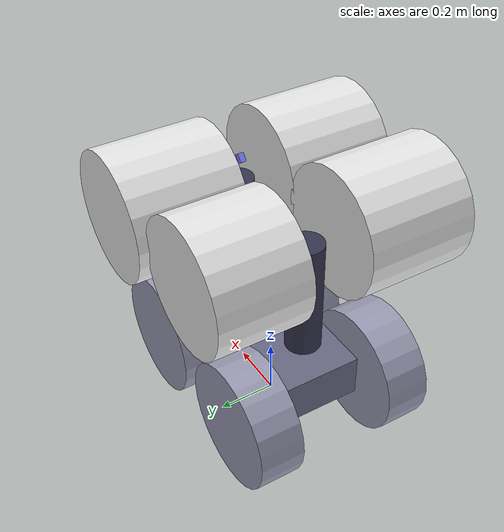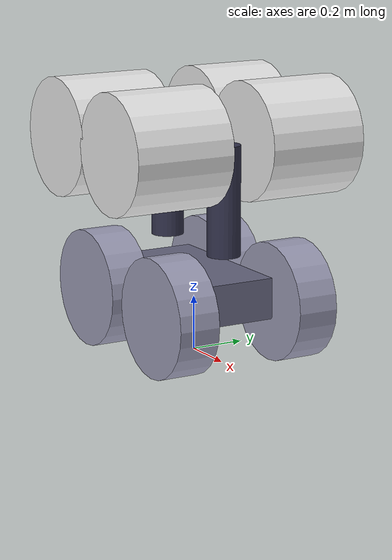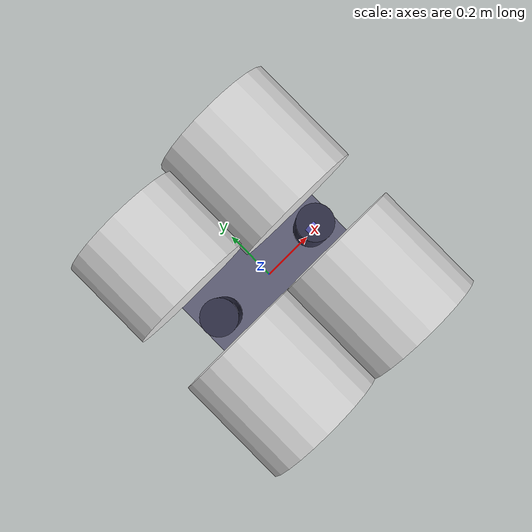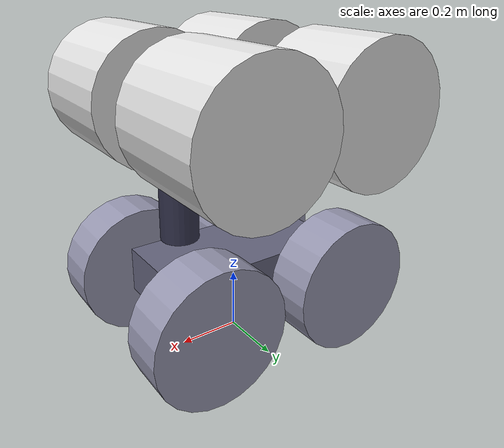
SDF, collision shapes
<?xml version="1.0" ?>
<sdf version="1.4">
  <model name="RASSOR2">

    <link name="chassis">
      <pose>0 0 0.240 0 0 0</pose>
      <inertial>
        <mass>35</mass>
        <inertia>
          <ixx>0.33</ixx>
          <ixy>0.0</ixy>
          <ixz>0.0</ixz>
          <iyy>6.7</iyy>
          <iyz>0.0</iyz>
          <izz>1.3</izz>
        </inertia>
      </inertial>
      <collision name="chassis_collision">
        <geometry>
	  <box>
	    <size>.60 .30 .15</size>
	  </box>
        </geometry>
	<surface>
	  <friction>
	    <ode>
	      <mu>0.9</mu>
	      <mu2>0.9</mu2>
	      <fdir1>0 0 0</fdir1>
	      <slip1>0.01</slip1>
	      <slip2>0.01</slip2>
	    </ode>
	  </friction>
	</surface>
      </collision>
      <visual name="chassis_visual">
        <geometry>
          <mesh>
            <uri>model://rassor2/chassis.dae</uri>
            <scale>1.0 1.0 1.0</scale>
          </mesh>
        </geometry>
	<material>
	    <ambient>0.4 0.4 0.5 1</ambient>
	    <diffuse>0.4 0.4 0.5 1</diffuse>
	    <specular>0.1 0.1 0.1 1</specular>
	    <emissive>0 0 0 0</emissive>
	</material>
      </visual>
    </link> <!-- end of chassis link -->

       <link name="front_arm_link">
            <pose>0.205 0.005 0.245 0 0 0</pose>
	    <inertial>
		<mass>2</mass>
		<inertia>
		  <ixx>0.04</ixx>
		  <ixy>0.0</ixy>
		  <ixz>0.0</ixz>
		  <iyy>0.04</iyy>
		  <iyz>0.0</iyz>
		  <izz>0.004</izz>
		</inertia>
	    </inertial>
            <collision name="collision">
            <pose>0 0 0.350 0 0 0</pose>
	      <geometry>
		<cylinder>
		  <radius>0.060</radius>
		  <length>0.4</length>
		</cylinder>
	      </geometry>
		<surface>
		  <friction>
		    <ode>
		      <mu>0.9</mu>
		      <mu2>0.9</mu2>
		      <fdir1>0 0 0</fdir1>
		      <slip1>0.01</slip1>
		      <slip2>0.01</slip2>
		    </ode>
		  </friction>
		</surface>
            </collision>
            <visual name="visual">
            <pose>0 -0.002 0.275 0 0 0</pose>
                <geometry>
                    <mesh>
            		<uri>model://rassor2/arm.dae</uri>
	                <scale>1.0 1.0 1.0</scale>
                    </mesh>
                </geometry>
		<material>
		    <ambient>0.2 0.2 0.3 1</ambient>
		    <diffuse>0.2 0.2 0.3 1</diffuse>
		    <specular>0.1 0.1 0.1 1</specular>
		    <emissive>0 0 0 0</emissive>
		</material>
            </visual>
        </link>

        <joint name="front_arm" type="revolute">
            <parent>chassis</parent>
            <child>front_arm_link</child>
            <axis>
                <xyz>0 1 0</xyz>
	        <limit>
	          <upper>3.82</upper>
	          <lower>-0.7</lower>
	        </limit>
            </axis>
        </joint>

      <link name="front_right_drum_link">
            <pose>0.205 -0.265 0.8 1.5708 0 0</pose>
	    <inertial>
		<mass>12</mass>
		<inertia>
		  <ixx>0.077</ixx>
		  <ixy>0.0</ixy>
		  <ixz>0.0</ixz>
		  <iyy>0.077</iyy>
		  <iyz>0.0</iyz>
		  <izz>0.093</izz>
		</inertia>
	    </inertial>
            <collision name="collision">
	      <geometry>
		<cylinder>
		  <radius>0.2159</radius>
		  <length>0.370</length>
		</cylinder>
	      </geometry>
		<surface>
		  <friction>
		    <ode>
		      <mu>0.9</mu>
		      <mu2>0.9</mu2>
		      <fdir1>0 0 0</fdir1>
		      <slip1>0.1</slip1>
		      <slip2>0.1</slip2>
		    </ode>
		  </friction>
		</surface>
            </collision>
            <visual name="visual">
                <geometry>
                    <mesh>
            		<uri>model://rassor2/right-drum.dae</uri>
	                <scale>1.0 1.0 1.0</scale>
                    </mesh>
                </geometry>
		<material>
		    <ambient>0.9 0.9 0.9 1</ambient>
		    <diffuse>0.9 0.9 0.9 1</diffuse>
		    <specular>0.1 0.1 0.1 1</specular>
		    <emissive>0 0 0 0</emissive>
		</material>
            </visual>
        </link>

        <joint name="front_right_drum" type="revolute">
            <parent>front_arm_link</parent>
            <child>front_right_drum_link</child>
            <axis>
                <xyz>0 1 0</xyz>
            </axis>
        </joint>

       <link name="front_left_drum_link">
            <pose>0.205 0.265 0.8 1.5708 0 0</pose>
	    <inertial>
		<mass>12</mass>
		<inertia>
		  <ixx>0.077</ixx>
		  <ixy>0.0</ixy>
		  <ixz>0.0</ixz>
		  <iyy>0.077</iyy>
		  <iyz>0.0</iyz>
		  <izz>0.093</izz>
		</inertia>
	    </inertial>
            <collision name="collision">
	      <geometry>
		<cylinder>
		  <radius>0.2159</radius>
		  <length>0.370</length>
		</cylinder>
	      </geometry>
		<surface>
		  <friction>
		    <ode>
		      <mu>0.9</mu>
		      <mu2>0.9</mu2>
		      <fdir1>0 0 0</fdir1>
		      <slip1>0.1</slip1>
		      <slip2>0.1</slip2>
		    </ode>
		  </friction>
		</surface>
            </collision>
            <visual name="visual">
            <pose>0 0 0 3.1416 0 0</pose>
                <geometry>
                    <mesh>
            		<uri>model://rassor2/left-drum.dae</uri>
	                <scale>1.0 1.0 1.0</scale>
                    </mesh>
                </geometry>
		<material>
		    <ambient>0.9 0.9 0.9 1</ambient>
		    <diffuse>0.9 0.9 0.9 1</diffuse>
		    <specular>0.1 0.1 0.1 1</specular>
		    <emissive>0 0 0 0</emissive>
		</material>
            </visual>
        </link>

        <joint name="front_left_drum" type="revolute">
            <parent>front_arm_link</parent>
            <child>front_left_drum_link</child>
            <axis>
                <xyz>0 1 0</xyz>
            </axis>
        </joint>

       <link name="rear_arm_link">
            <pose>-0.205 0.005 0.245 0 0 0</pose>
	    <inertial>
		<mass>2</mass>
		<inertia>
		  <ixx>0.04</ixx>
		  <ixy>0.0</ixy>
		  <ixz>0.0</ixz>
		  <iyy>0.04</iyy>
		  <iyz>0.0</iyz>
		  <izz>0.004</izz>
		</inertia>
	    </inertial>
            <collision name="collision">
            <pose>0 0 0.350 0 0 0</pose>
	      <geometry>
		<cylinder>
		  <radius>0.060</radius>
		  <length>0.4</length>
		</cylinder>
	      </geometry>
		<surface>
		  <friction>
		    <ode>
		      <mu>0.9</mu>
		      <mu2>0.9</mu2>
		      <fdir1>0 0 0</fdir1>
		      <slip1>0.01</slip1>
		      <slip2>0.01</slip2>
		    </ode>
		  </friction>
		</surface>
            </collision>
            <visual name="visual">
            <pose>0 -0.002 0.275 0 0 0</pose>
                <geometry>
                    <mesh>
            		<uri>model://rassor2/arm.dae</uri>
	                <scale>1.0 1.0 1.0</scale>
                    </mesh>
                </geometry>
		<material>
		    <ambient>0.2 0.2 0.3 1</ambient>
		    <diffuse>0.2 0.2 0.3 1</diffuse>
		    <specular>0.1 0.1 0.1 1</specular>
		    <emissive>0 0 0 0</emissive>
		</material>
            </visual>
        </link>

        <joint name="rear_arm" type="revolute">
            <parent>chassis</parent>
            <child>rear_arm_link</child>
            <axis>
                <xyz>0 1 0</xyz>
	        <limit>
	          <upper>0.7</upper>
	          <lower>-3.82</lower>
	        </limit>
            </axis>
        </joint>

       <link name="rear_right_drum_link">
            <pose>-0.205 -0.265 0.8 1.5708 0 0</pose>
	    <inertial>
		<mass>4</mass>
		<inertia>
		  <ixx>0.077</ixx>
		  <ixy>0.0</ixy>
		  <ixz>0.0</ixz>
		  <iyy>0.077</iyy>
		  <iyz>0.0</iyz>
		  <izz>0.093</izz>
		</inertia>
	    </inertial>
            <collision name="collision">
	      <geometry>
		<cylinder>
		  <radius>0.2159</radius>
		  <length>0.370</length>
		</cylinder>
	      </geometry>
		<surface>
		  <friction>
		    <ode>
		      <mu>0.9</mu>
		      <mu2>0.9</mu2>
		      <fdir1>0 0 0</fdir1>
		      <slip1>0.1</slip1>
		      <slip2>0.1</slip2>
		    </ode>
		  </friction>
		</surface>
            </collision>
            <visual name="visual">
                <geometry>
                    <mesh>
            		<uri>model://rassor2/left-drum.dae</uri>
	                <scale>1.0 1.0 1.0</scale>
                    </mesh>
                </geometry>
		<material>
		    <ambient>0.9 0.9 0.9 1</ambient>
		    <diffuse>0.9 0.9 0.9 1</diffuse>
		    <specular>0.1 0.1 0.1 1</specular>
		    <emissive>0 0 0 0</emissive>
		</material>
            </visual>
        </link>

        <joint name="rear_right_drum" type="revolute">
            <parent>rear_arm_link</parent>
            <child>rear_right_drum_link</child>
            <axis>
                <xyz>0 1 0</xyz>
            </axis>
        </joint>

       <link name="rear_left_drum_link">
            <pose>-0.205 0.265 0.8 1.5708 0 0</pose>
	    <inertial>
		<mass>4</mass>
		<inertia>
		  <ixx>0.077</ixx>
		  <ixy>0.0</ixy>
		  <ixz>0.0</ixz>
		  <iyy>0.077</iyy>
		  <iyz>0.0</iyz>
		  <izz>0.093</izz>
		</inertia>
	    </inertial>
            <collision name="collision">
	      <geometry>
		<cylinder>
		  <radius>0.2159</radius>
		  <length>0.304</length>
		</cylinder>
	      </geometry>
		<surface>
		  <friction>
		    <ode>
		      <mu>0.9</mu>
		      <mu2>0.9</mu2>
		      <fdir1>0 0 0</fdir1>
		      <slip1>0.1</slip1>
		      <slip2>0.1</slip2>
		    </ode>
		  </friction>
		</surface>
            </collision>
            <visual name="visual">
            <pose>0 0 0 3.1416 0 0</pose>
                <geometry>
                    <mesh>
            		<uri>model://rassor2/right-drum.dae</uri>
	                <scale>1.0 1.0 1.0</scale>
                    </mesh>
                </geometry>
		<material>
		    <ambient>0.9 0.9 0.9 1</ambient>
		    <diffuse>0.9 0.9 0.9 1</diffuse>
		    <specular>0.1 0.1 0.1 1</specular>
		    <emissive>0 0 0 0</emissive>
		</material>
            </visual>
        </link>

        <joint name="rear_left_drum" type="revolute">
            <parent>rear_arm_link</parent>
            <child>rear_left_drum_link</child>
            <axis>
                <xyz>0 1 0</xyz>
            </axis>
        </joint>

        <link name="left_front_wheel">
            <pose>0.250 0.240 0.2159 -1.5708 0 0</pose>
	    <inertial>
		<mass>4</mass>
		<inertia>
		  <ixx>0.05</ixx>
		  <ixy>0.0</ixy>
		  <ixz>0.0</ixz>
		  <iyy>0.05</iyy>
		  <iyz>0.0</iyz>
		  <izz>0.09</izz>
		</inertia>
	    </inertial>
            <collision name="collision">
	      <geometry>
		<cylinder>
		  <radius>0.2159</radius><!-- 6 in wide, 17 inch diameter-->
		  <length>0.1524</length>
		</cylinder>
	      </geometry>
		<surface>
		  <friction>
		    <ode>
		      <mu>0.9</mu>
		      <mu2>0.9</mu2>
		      <fdir1>0 0 0</fdir1>
		      <slip1>0.8</slip1>
		      <slip2>0.4</slip2>
		    </ode>
		  </friction>
		</surface>
            </collision>
            <visual name="visual">
                <geometry>
                   <mesh>
            		<uri>model://rassor2/wheel.dae</uri>
	                <scale>1.0 1.0 1.0</scale>
                    </mesh>
                </geometry>
		<material>
		    <ambient>0.6 0.6 0.7 1</ambient>
		    <diffuse>0.6 0.6 0.7 1</diffuse>
		    <specular>0.1 0.1 0.1 1</specular>
		    <emissive>0 0 0 0</emissive>
		</material>
            </visual>
        </link>

        <joint name="left_front" type="revolute">
            <parent>chassis</parent>
            <child>left_front_wheel</child>
            <axis>
                <xyz>0 1 0</xyz>
            </axis>
        </joint>

        <link name="right_front_wheel">
            <pose>0.250 -0.240 0.2159 1.5708 0 0</pose>
	    <inertial>
		<mass>4</mass>
		<inertia>
		  <ixx>0.05</ixx>
		  <ixy>0.0</ixy>
		  <ixz>0.0</ixz>
		  <iyy>0.05</iyy>
		  <iyz>0.0</iyz>
		  <izz>0.09</izz>
		</inertia>
	    </inertial>
            <collision name="collision">
	      <geometry>
		<cylinder>
		  <radius>0.2159</radius><!-- 6 in wide, 17 inch diameter-->
		  <length>0.1524</length>
		</cylinder>
	      </geometry>
		<surface>
		  <friction>
		    <ode>
		      <mu>0.9</mu>
		      <mu2>0.9</mu2>
		      <fdir1>0 0 0</fdir1>
		      <slip1>0.8</slip1>
		      <slip2>0.4</slip2>
		    </ode>
		  </friction>
		</surface>
            </collision>
            <visual name="visual">
                <geometry>
                   <mesh>
            		<uri>model://rassor2/wheel.dae</uri>
	                <scale>1.0 1.0 1.0</scale>
                    </mesh>
                </geometry>
		<material>
		    <ambient>0.6 0.6 0.7 1</ambient>
		    <diffuse>0.6 0.6 0.7 1</diffuse>
		    <specular>0.1 0.1 0.1 1</specular>
		    <emissive>0 0 0 0</emissive>
		</material>
            </visual>
        </link>

        <joint name="right_front" type="revolute">
            <parent>chassis</parent>
            <child>right_front_wheel</child>
            <axis>
                <xyz>0 1 0</xyz>
            </axis>
        </joint>

        <link name="left_rear_wheel">
            <pose>-0.250 0.240 0.2159 -1.5708 0 0</pose>
	    <inertial>
		<mass>4</mass>
		<inertia>
		  <ixx>0.05</ixx>
		  <ixy>0.0</ixy>
		  <ixz>0.0</ixz>
		  <iyy>0.05</iyy>
		  <iyz>0.0</iyz>
		  <izz>0.09</izz>
		</inertia>
	    </inertial>
            <collision name="collision">
	      <geometry>
		<cylinder>
		  <radius>0.2159</radius><!-- 6 in wide, 17 inch diameter-->
		  <length>0.1524</length>
		</cylinder>
	      </geometry>
		<surface>
		  <friction>
		    <ode>
		      <mu>0.9</mu>
		      <mu2>0.9</mu2>
		      <fdir1>0 0 0</fdir1>
		      <slip1>0.8</slip1>
		      <slip2>0.4</slip2>
		    </ode>
		  </friction>
		</surface>
            </collision>
            <visual name="visual">
                <geometry>
                   <mesh>
            		<uri>model://rassor2/wheel.dae</uri>
	                <scale>1.0 1.0 1.0</scale>
                    </mesh>
                </geometry>
		<material>
		    <ambient>0.6 0.6 0.7 1</ambient>
		    <diffuse>0.6 0.6 0.7 1</diffuse>
		    <specular>0.1 0.1 0.1 1</specular>
		    <emissive>0 0 0 0</emissive>
		</material>
            </visual>
        </link>

        <joint name="left_rear" type="revolute">
            <parent>chassis</parent>
            <child>left_rear_wheel</child>
            <axis>
                <xyz>0 1 0</xyz>
            </axis>
        </joint>

        <link name="right_rear_wheel">
            <pose>-0.250 -0.240 0.2159 1.5708 0 0</pose>
	    <inertial>
		<mass>4</mass>
		<inertia>
		  <ixx>0.05</ixx>
		  <ixy>0.0</ixy>
		  <ixz>0.0</ixz>
		  <iyy>0.05</iyy>
		  <iyz>0.0</iyz>
		  <izz>0.09</izz>
		</inertia>
	    </inertial>
            <collision name="collision">
	      <geometry>
		<cylinder>
		  <radius>0.2159</radius><!-- 6 in wide, 17 inch diameter-->
		  <length>0.1524</length>
		</cylinder>
	      </geometry>
		<surface>
		  <friction>
		    <ode>
		      <mu>0.9</mu>
		      <mu2>0.9</mu2>
		      <fdir1>0 0 0</fdir1>
		      <slip1>0.8</slip1>
		      <slip2>0.4</slip2>
		    </ode>
		  </friction>
		</surface>
            </collision>
            <visual name="visual">
                <geometry>
                   <mesh>
            		<uri>model://rassor2/wheel.dae</uri>
	                <scale>1.0 1.0 1.0</scale>
                    </mesh>
                </geometry>
		<material>
		    <ambient>0.6 0.6 0.7 1</ambient>
		    <diffuse>0.6 0.6 0.7 1</diffuse>
		    <specular>0.1 0.1 0.1 1</specular>
		    <emissive>0 0 0 0</emissive>
		</material>
            </visual>
        </link>

        <joint name="right_rear" type="revolute">
            <parent>chassis</parent>
            <child>right_rear_wheel</child>
            <axis>
                <xyz>0 1 0</xyz>
            </axis>
        </joint>

<!-- front camera definition -->
  <link name="front_camera_link">

	<collision name='collision'>
	  <pose>0.180 0.0 0.880 0 -0.9 0</pose>
	  <geometry>
	    <box>
	      <size>.030 .020 .020</size>
	    </box>
	  </geometry>
	</collision>

	<visual name='visual'>
	  <pose>0.180 0.0 0.880 0 -0.9 0</pose>
	  <geometry>
	    <box>
	      <size>.030 .020 .020</size>
	    </box>
	  </geometry>
	<material>
	    <ambient>0.5 0.5 1 1</ambient>
	    <diffuse>0.5 0.5 1 1</diffuse>
	    <specular>0.1 0.1 0.1 1</specular>
	    <emissive>0 0 0 0</emissive>
	</material>
	</visual>

    <sensor type="camera" name="front_camera">
	  <pose>0.18 0.0 0.880 0 -0.9 0</pose>
      <update_rate>24.0</update_rate>
      <camera name="front">
        <horizontal_fov>1.3962634</horizontal_fov>
        <image>
          <width>800</width>
          <height>600</height>
          <format>R8G8B8</format>
        </image>
        <clip>
          <near>0.02</near>
          <far>300</far>
        </clip>
        <noise>
          <type>gaussian</type>
          <mean>0.0</mean>
          <stddev>0.007</stddev>
        </noise>
      </camera>
      <plugin name="camera_controller" filename="libgazebo_ros_camera.so">
        <alwaysOn>true</alwaysOn>
        <updateRate>24.0</updateRate>
    	<robotNamespace>/rassor2</robotNamespace>
        <cameraName>front_camera</cameraName>
        <imageTopicName>image</imageTopicName>
        <cameraInfoTopicName>front_camera_info</cameraInfoTopicName>
        <frameName>front_camera</frameName>
        <hackBaseline>0.07</hackBaseline>
        <distortionK1>0.0</distortionK1>
        <distortionK2>0.0</distortionK2>
        <distortionK3>0.0</distortionK3>
        <distortionT1>0.0</distortionT1>
        <distortionT2>0.0</distortionT2>
      </plugin>
    </sensor>

  </link>

  <joint name="front_camera_joint" type="revolute">
      <parent>front_arm_link</parent>
      <child>front_camera_link</child>
	  <axis>
	    <xyz>0 1 0</xyz>
	    <limit>
	      <upper>0</upper>
	      <lower>0</lower>
	    </limit>
	  </axis>
  </joint>

	<!-- inertial measurement unit definition -->
	<plugin name="imu_sim" filename="libhector_gazebo_ros_imu.so">
	      <updateRate>10</updateRate>
              <robotNamespace>/rassor2</robotNamespace>
	      <bodyName>chassis</bodyName>
	      <topicName>imu</topicName>
	      <rpyOffsets>0 0 0</rpyOffsets>
	      <gaussianNoise>0</gaussianNoise>
	      <accelDrift>0.2 0.2 0.2</accelDrift>
	      <accelGaussianNoise>0.1 0.1 0.05</accelGaussianNoise>
	      <rateDrift>0.1 0.1 0.1</rateDrift>
	      <rateGaussianNoise>0.05 0.05 0.015</rateGaussianNoise>
	      <headingDrift>0.1</headingDrift>
	      <headingGaussianNoise>0.05</headingGaussianNoise>
	</plugin>

<!-- controller for the 4 drive wheels -->
  <plugin name="skid_steer_drive_controller" filename="libgazebo_ros_skid_steer_drive.so">
    <updateRate>10</updateRate>
    <robotNamespace>/rassor2</robotNamespace>
    <leftFrontJoint>left_front</leftFrontJoint>
    <rightFrontJoint>right_front</rightFrontJoint>
    <leftRearJoint>left_rear</leftRearJoint>
    <rightRearJoint>right_rear</rightRearJoint>
    <wheelSeparation>0.460</wheelSeparation>
    <wheelDiameter>0.430</wheelDiameter>
    <robotBaseFrame>chassis</robotBaseFrame>
    <torque>200.0</torque>
    <commandTopic>mobility</commandTopic>
    <odometryTopic>odom_mobility</odometryTopic>
    <odometryFrame>odom</odometryFrame>
  </plugin>

<!-- controller for the front arm -->
  <plugin name="differential_drive_controller" filename="libgazebo_ros_diff_drive.so">
    <alwaysOn>true</alwaysOn>
    <updateRate>10</updateRate>
    <robotNamespace>/rassor2</robotNamespace>
    <leftJoint>front_arm</leftJoint>
    <rightJoint>front_arm</rightJoint>
    <wheelSeparation>0.5</wheelSeparation>
    <wheelDiameter>0.5</wheelDiameter>
    <torque>200</torque>
    <commandTopic>arm_front</commandTopic>
    <odometryTopic>odom_arm_front</odometryTopic>
    <odometryFrame>odom</odometryFrame>
    <robotBaseFrame>chassis</robotBaseFrame>
  </plugin>

<!-- controller for the front left drum -->
  <plugin name="differential_drive_controller" filename="libgazebo_ros_diff_drive.so">
    <alwaysOn>true</alwaysOn>
    <updateRate>10</updateRate>
    <robotNamespace>/rassor2</robotNamespace>
    <leftJoint>front_left_drum</leftJoint>
    <rightJoint>front_left_drum</rightJoint>
    <wheelSeparation>0.5</wheelSeparation>
    <wheelDiameter>0.5</wheelDiameter>
    <torque>200</torque>
    <commandTopic>drum_front_left</commandTopic>
    <odometryTopic>odom_front_left</odometryTopic>
    <odometryFrame>odom</odometryFrame>
    <robotBaseFrame>chassis</robotBaseFrame>
  </plugin>

<!-- controller for the front right drum -->
  <plugin name="differential_drive_controller" filename="libgazebo_ros_diff_drive.so">
    <alwaysOn>true</alwaysOn>
    <updateRate>10</updateRate>
    <robotNamespace>/rassor2</robotNamespace>
    <leftJoint>front_right_drum</leftJoint>
    <rightJoint>front_right_drum</rightJoint>
    <wheelSeparation>0.5</wheelSeparation>
    <wheelDiameter>0.5</wheelDiameter>
    <torque>200</torque>
    <commandTopic>drum_front_right</commandTopic>
    <odometryTopic>odom_front_right</odometryTopic>
    <odometryFrame>odom</odometryFrame>
    <robotBaseFrame>chassis</robotBaseFrame>
  </plugin>

<!-- controller for the rear arm -->
  <plugin name="differential_drive_controller" filename="libgazebo_ros_diff_drive.so">
    <alwaysOn>true</alwaysOn>
    <updateRate>10</updateRate>
    <robotNamespace>/rassor2</robotNamespace>
    <leftJoint>rear_arm</leftJoint>
    <rightJoint>rear_arm</rightJoint>
    <wheelSeparation>0.5</wheelSeparation>
    <wheelDiameter>0.5</wheelDiameter>
    <torque>200</torque>
    <commandTopic>arm_rear</commandTopic>
    <odometryTopic>odom3</odometryTopic>
    <odometryFrame>odom3</odometryFrame>
    <robotBaseFrame>chassis</robotBaseFrame>
  </plugin>

<!-- controller for the rear left drum -->
  <plugin name="differential_drive_controller" filename="libgazebo_ros_diff_drive.so">
    <alwaysOn>true</alwaysOn>
    <updateRate>10</updateRate>
    <robotNamespace>/rassor2</robotNamespace>
    <leftJoint>rear_left_drum</leftJoint>
    <rightJoint>rear_left_drum</rightJoint>
    <wheelSeparation>0.5</wheelSeparation>
    <wheelDiameter>0.5</wheelDiameter>
    <torque>200</torque>
    <commandTopic>drum_rear_left</commandTopic>
    <odometryTopic>odom_rear_left</odometryTopic>
    <odometryFrame>odom</odometryFrame>
    <robotBaseFrame>chassis</robotBaseFrame>
  </plugin>

<!-- controller for the rear right drum -->
  <plugin name="differential_drive_controller" filename="libgazebo_ros_diff_drive.so">
    <alwaysOn>true</alwaysOn>
    <updateRate>10</updateRate>
    <robotNamespace>/rassor2</robotNamespace>
    <leftJoint>rear_right_drum</leftJoint>
    <rightJoint>rear_right_drum</rightJoint>
    <wheelSeparation>0.5</wheelSeparation>
    <wheelDiameter>0.5</wheelDiameter>
    <torque>200</torque>
    <commandTopic>drum_rear_right</commandTopic>
    <odometryTopic>odom_rear_right</odometryTopic>
    <odometryFrame>odom</odometryFrame>
    <robotBaseFrame>chassis</robotBaseFrame>
  </plugin>

  </model>
</sdf>
